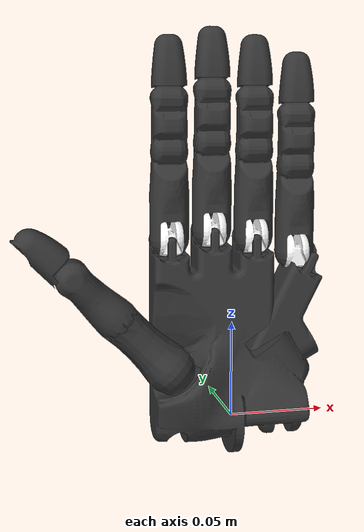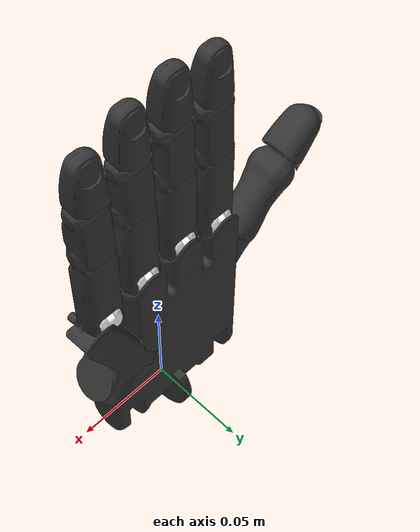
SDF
<sdf version='1.11'>
  <model name='lh_palm'>
    <link name='lh_palm'>
      <inertial>
        <pose>-0.0021985926178870719 -0.00091810075126349774 0.033778046718497323 0 0 0</pose>
        <mass>0.50768530368804932</mass>
        <inertia>
          <ixx>0.00052971416725619428</ixx>
          <ixy>-1.570920562171566e-06</ixy>
          <ixz>1.471569991708484e-05</ixz>
          <iyy>0.0007745936598541678</iyy>
          <iyz>-1.2580024292888871e-05</iyz>
          <izz>0.00029222616847752152</izz>
        </inertia>
      </inertial>
      <collision name='lh_palm_fixed_joint_lump__Geom_1_collision'>
        <pose>-0.01099999994039536 0.008500000461935997 0.037999998778104782 0 0 0</pose>
        <geometry>
          <box>
            <size>0.061999998986721039 0.0070000002160668373 0.097999997437000275</size>
          </box>
        </geometry>
      </collision>
      <collision name='lh_palm_fixed_joint_lump__Geom_2_collision_1'>
        <pose>0.002000000094994903 -0.0035000001080334191 0.037999998778104782 0 0 0</pose>
        <geometry>
          <box>
            <size>0.035999998450279243 0.017000000923871991 0.097999997437000275</size>
          </box>
        </geometry>
      </collision>
      <collision name='lh_palm_fixed_joint_lump__Geom_3_collision_2'>
        <pose>-0.02899999916553497 -0.0035000001080334191 0.082000002264976501 0 0 0</pose>
        <geometry>
          <box>
            <size>0.0260000005364418 0.017000000923871991 0.0099999997764825821</size>
          </box>
        </geometry>
      </collision>
      <collision name='lh_palm_fixed_joint_lump__Geom_4_collision_3'>
        <pose>-0.026499999687075611 -0.0010000000474974511 0.070000000298023224 0.19393959641456601 0.049171395599842072 -0.24521610140800468</pose>
        <geometry>
          <box>
            <size>0.0260000005364418 0.014000000432133669 0.017999999225139621</size>
          </box>
        </geometry>
      </collision>
      <collision name='lh_palm_fixed_joint_lump__Geom_5_collision_4'>
        <pose>-0.031500000506639481 -0.008500000461935997 0.0010000000474974511 0 0 0</pose>
        <geometry>
          <box>
            <size>0.020999999716877941 0.02700000070035458 0.02239999920129776</size>
          </box>
        </geometry>
      </collision>
      <collision name='lh_palm_fixed_joint_lump__Geom_6_collision_5'>
        <pose>-0.01250000018626451 -0.01499999966472387 0.0040000001899898052 0 0 0.48000070452690119</pose>
        <geometry>
          <box>
            <size>0.02199999988079071 0.004999999888241291 0.02999999932944775</size>
          </box>
        </geometry>
      </collision>
      <collision name='lh_palm_fixed_joint_lump__Geom_7_collision_6'>
        <pose>-0.01099999994039536 0 0.089000001549720764 0 0 0</pose>
        <geometry>
          <box>
            <size>0.017999999225139621 0.02400000020861626 0.0040000001899898052</size>
          </box>
        </geometry>
      </collision>
      <collision name='lh_palm_fixed_joint_lump__Geom_8_collision_7'>
        <pose>0.02999999932944775 0 0.008999999612569809 0 0 0</pose>
        <geometry>
          <box>
            <size>0.019999999552965161 0.02400000020861626 0.039999999105930328</size>
          </box>
        </geometry>
      </collision>
      <visual name='lh_palm_fixed_joint_lump__Geom_0_visual'>
        <pose>-0.0053744451142847538 -0.0022442906629294161 0.032012943178415298 -0.2100458145141601 0.083132773637771648 1.5912715196609499</pose>
        <geometry>
          <mesh>
            <scale>1 1 1</scale>
            <uri>./assets/obj/l_palm.obj</uri>
          </mesh>
        </geometry>
        <material>
          <diffuse>0.204437509 0.204437509 0.204437509 1</diffuse>
          <ambient>0.204437509 0.204437509 0.204437509 1</ambient>
        </material>
      </visual>
    </link>
    <joint name='lh_FFJ4' type='revolute'>
      <pose relative_to='lh_palm'>-0.032999999821186073 0 0.094999998807907104 0 0 0</pose>
      <parent>lh_palm</parent>
      <child>lh_ffknuckle</child>
      <axis>
        <xyz>0 1 0</xyz>
        <limit>
          <lower>-0.34906598925590521</lower>
          <upper>0.34906598925590521</upper>
          <effort>1000</effort>
          <velocity>1000</velocity>
        </limit>
        <dynamics>
          <spring_reference>0</spring_reference>
          <spring_stiffness>0</spring_stiffness>
        </dynamics>
      </axis>
    </joint>
    <link name='lh_ffknuckle'>
      <pose relative_to='lh_FFJ4'>0 0 0 0 0 0</pose>
      <inertial>
        <pose>0 0 0 0 0 0</pose>
        <mass>0.0080000003799796104</mass>
        <inertia>
          <ixx>2.6000000730164169e-07</ixx>
          <ixy>0</ixy>
          <ixz>0</ixz>
          <iyy>2.6000000730164169e-07</iyy>
          <iyz>0</iyz>
          <izz>3.1999999805520929e-07</izz>
        </inertia>
      </inertial>
      <collision name='lh_ffknuckle_fixed_joint_lump__Geom_11_collision'>
        <pose>0 0 0 0 1.5707963267948966 0</pose>
        <geometry>
          <cylinder>
            <length>0.017999999225139621</length>
            <radius>0.008999999612569809</radius>
          </cylinder>
        </geometry>
      </collision>
      <visual name='lh_ffknuckle_fixed_joint_lump__Geom_10_visual'>
        <pose>-8.0159534263657406e-06 0.00028383333119563758 0.0003141145571134984 0.47617125511169428 0 0</pose>
        <geometry>
          <mesh>
            <scale>1 1 1</scale>
            <uri>./assets/obj/f_knuckle.obj</uri>
          </mesh>
        </geometry>
        <material>
          <diffuse>1 1 1 1</diffuse>
          <ambient>1 1 1 1</ambient>
        </material>
      </visual>
    </link>
    <joint name='lh_FFJ3' type='revolute'>
      <pose relative_to='lh_ffknuckle'>0 0 0 0 0 0</pose>
      <parent>lh_ffknuckle</parent>
      <child>lh_ffproximal</child>
      <axis>
        <xyz>1 0 0</xyz>
        <limit>
          <lower>-0.26179900765419012</lower>
          <upper>1.5708000659942629</upper>
          <effort>1000</effort>
          <velocity>1000</velocity>
        </limit>
        <dynamics>
          <spring_reference>0</spring_reference>
          <spring_stiffness>0</spring_stiffness>
        </dynamics>
      </axis>
    </joint>
    <link name='lh_ffproximal'>
      <pose relative_to='lh_FFJ3'>0 0 0 0 0 0</pose>
      <inertial>
        <pose>0 0 0.022500000894069672 0 0 0</pose>
        <mass>0.02999999932944775</mass>
        <inertia>
          <ixx>9.8000000434694812e-06</ixx>
          <ixy>0</ixy>
          <ixz>0</ixz>
          <iyy>9.9999997473787516e-06</iyy>
          <iyz>0</iyz>
          <izz>1.799999949980702e-06</izz>
        </inertia>
      </inertial>
      <collision name='lh_ffproximal_fixed_joint_lump__Geom_13_collision'>
        <pose>0 0 0.02500000037252903 0 0 0</pose>
        <geometry>
          <cylinder>
            <length>0.039999999105930328</length>
            <radius>0.008999999612569809</radius>
          </cylinder>
        </geometry>
      </collision>
      <visual name='lh_ffproximal_fixed_joint_lump__Geom_12_visual'>
        <pose>1.2104840152460379e-06 9.7617894425638951e-06 0.022880652919411659 -8.674230925925565e-19 0.011893937364220619 1.5707963705062868</pose>
        <geometry>
          <mesh>
            <scale>1 1 1</scale>
            <uri>./assets/obj/f_proximal.obj</uri>
          </mesh>
        </geometry>
        <material>
          <diffuse>0.204437509 0.204437509 0.204437509 1</diffuse>
          <ambient>0.204437509 0.204437509 0.204437509 1</ambient>
        </material>
      </visual>
    </link>
    <joint name='lh_FFJ2' type='revolute'>
      <pose relative_to='lh_ffproximal'>0 0 0.045000001788139343 0 0 0</pose>
      <parent>lh_ffproximal</parent>
      <child>lh_ffmiddle</child>
      <axis>
        <xyz>1 0 0</xyz>
        <limit>
          <lower>0</lower>
          <upper>1.5708000659942629</upper>
          <effort>1000</effort>
          <velocity>1000</velocity>
        </limit>
        <dynamics>
          <spring_reference>0</spring_reference>
          <spring_stiffness>0</spring_stiffness>
        </dynamics>
      </axis>
    </joint>
    <link name='lh_ffmiddle'>
      <pose relative_to='lh_FFJ2'>0 0 0 0 0 0</pose>
      <inertial>
        <pose>0 0 0.01250000018626451 0 0 0</pose>
        <mass>0.017000000923871991</mass>
        <inertia>
          <ixx>2.600000016172999e-06</ixx>
          <ixy>0</ixy>
          <ixz>0</ixz>
          <iyy>2.7000000955013088e-06</iyy>
          <iyz>0</iyz>
          <izz>8.7000000803527655e-07</izz>
        </inertia>
      </inertial>
      <collision name='lh_ffmiddle_fixed_joint_lump__Geom_15_collision'>
        <pose>0 0 0.01250000018626451 0 0 0</pose>
        <geometry>
          <cylinder>
            <length>0.02500000037252903</length>
            <radius>0.008999999612569809</radius>
          </cylinder>
        </geometry>
      </collision>
      <visual name='lh_ffmiddle_fixed_joint_lump__Geom_14_visual'>
        <pose>-2.7197006602364131e-06 -3.2192867365665727e-05 0.011511409655213359 0 0 1.5707963705062871</pose>
        <geometry>
          <mesh>
            <scale>1 1 1</scale>
            <uri>./assets/obj/f_middle.obj</uri>
          </mesh>
        </geometry>
        <material>
          <diffuse>0.204437509 0.204437509 0.204437509 1</diffuse>
          <ambient>0.204437509 0.204437509 0.204437509 1</ambient>
        </material>
      </visual>
    </link>
    <joint name='lh_FFJ1' type='revolute'>
      <pose relative_to='lh_ffmiddle'>0 0 0.02500000037252903 0 0 0</pose>
      <parent>lh_ffmiddle</parent>
      <child>lh_ffdistal</child>
      <axis>
        <xyz>1 0 0</xyz>
        <limit>
          <lower>0</lower>
          <upper>1.5708000659942629</upper>
          <effort>1000</effort>
          <velocity>1000</velocity>
        </limit>
        <dynamics>
          <spring_reference>0</spring_reference>
          <spring_stiffness>0</spring_stiffness>
        </dynamics>
      </axis>
    </joint>
    <link name='lh_ffdistal'>
      <pose relative_to='lh_FFJ1'>0 0 0 0 0 0</pose>
      <inertial>
        <pose>0 0 0.0130768995732069 0 0 0</pose>
        <mass>0.0130000002682209</mass>
        <inertia>
          <ixx>1.120920046560059e-06</ixx>
          <ixy>0</ixy>
          <ixz>0</ixz>
          <iyy>1.2809199461116801e-06</iyy>
          <iyz>0</iyz>
          <izz>5.3000002253611456e-07</izz>
        </inertia>
      </inertial>
      <collision name='lh_ffdistal_fixed_joint_lump__Geom_17_collision'>
        <pose>-2.3984401195775721e-05 0.00042073254007846122 0.01764647476375103 0 0 1.5707963705062871</pose>
        <geometry>
          <mesh>
            <scale>1 1 1</scale>
            <uri>./assets/stl/f_distal_pst.stl</uri>
          </mesh>
        </geometry>
      </collision>
      <visual name='lh_ffdistal_fixed_joint_lump__Geom_16_visual'>
        <pose>-2.3984401195775721e-05 0.00042073254007846122 0.01764647476375103 0 0 1.5707963705062871</pose>
        <geometry>
          <mesh>
            <scale>1 1 1</scale>
            <uri>./assets/obj/f_distal_pst.obj</uri>
          </mesh>
        </geometry>
        <material>
          <diffuse>0.204437509 0.204437509 0.204437509 1</diffuse>
          <ambient>0.204437509 0.204437509 0.204437509 1</ambient>
        </material>
      </visual>
    </link>
    <joint name='lh_LFJ5' type='revolute'>
      <pose relative_to='lh_palm'>0.032999999821186073 0 0.020710000768303871 0 0 0</pose>
      <parent>lh_palm</parent>
      <child>lh_lfmetacarpal</child>
      <axis>
        <xyz>0.57357615232467651 0 -0.81915223598480225</xyz>
        <limit>
          <lower>0</lower>
          <upper>0.78539800643920898</upper>
          <effort>1000</effort>
          <velocity>1000</velocity>
        </limit>
        <dynamics>
          <spring_reference>0</spring_reference>
          <spring_stiffness>0</spring_stiffness>
        </dynamics>
      </axis>
    </joint>
    <link name='lh_lfmetacarpal'>
      <pose relative_to='lh_LFJ5'>0 0 0 0 0 0</pose>
      <inertial>
        <pose>0 0 0.039999999105930328 0 0 0</pose>
        <mass>0.02999999932944775</mass>
        <inertia>
          <ixx>1.450000036129495e-05</ixx>
          <ixy>0</ixy>
          <ixz>0</ixz>
          <iyy>1.6379999578930441e-05</iyy>
          <iyz>0</iyz>
          <izz>4.2719998418760952e-06</izz>
        </inertia>
      </inertial>
      <collision name='lh_lfmetacarpal_fixed_joint_lump__Geom_35_collision'>
        <pose>-0.002000000094994903 0 0.032999999821186073 0 0 0</pose>
        <geometry>
          <box>
            <size>0.02199999988079071 0.02400000020861626 0.05000000074505806</size>
          </box>
        </geometry>
      </collision>
      <visual name='lh_lfmetacarpal_fixed_joint_lump__Geom_34_visual'>
        <pose>-0.0024777483195066452 0.00066233589313924313 0.036479774862527847 0.23058989644050601 0.039690095931291594 1.5920475721359251</pose>
        <geometry>
          <mesh>
            <scale>1 1 1</scale>
            <uri>./assets/obj/lf_metacarpal.obj</uri>
          </mesh>
        </geometry>
        <material>
          <diffuse>0.204437509 0.204437509 0.204437509 1</diffuse>
          <ambient>0.204437509 0.204437509 0.204437509 1</ambient>
        </material>
      </visual>
    </link>
    <joint name='lh_LFJ4' type='revolute'>
      <pose relative_to='lh_lfmetacarpal'>0 0 0.065789997577667236 0 0 0</pose>
      <parent>lh_lfmetacarpal</parent>
      <child>lh_lfknuckle</child>
      <axis>
        <xyz>0 -1 0</xyz>
        <limit>
          <lower>-0.34906598925590521</lower>
          <upper>0.34906598925590521</upper>
          <effort>1000</effort>
          <velocity>1000</velocity>
        </limit>
        <dynamics>
          <spring_reference>0</spring_reference>
          <spring_stiffness>0</spring_stiffness>
        </dynamics>
      </axis>
    </joint>
    <link name='lh_lfknuckle'>
      <pose relative_to='lh_LFJ4'>0 0 0 0 0 0</pose>
      <inertial>
        <pose>0 0 0 0 0 0</pose>
        <mass>0.0080000003799796104</mass>
        <inertia>
          <ixx>2.6000000730164169e-07</ixx>
          <ixy>0</ixy>
          <ixz>0</ixz>
          <iyy>2.6000000730164169e-07</iyy>
          <iyz>0</iyz>
          <izz>3.1999999805520929e-07</izz>
        </inertia>
      </inertial>
      <collision name='lh_lfknuckle_fixed_joint_lump__Geom_37_collision'>
        <pose>0 0 0 0 1.5707963267948966 0</pose>
        <geometry>
          <cylinder>
            <length>0.017999999225139621</length>
            <radius>0.008999999612569809</radius>
          </cylinder>
        </geometry>
      </collision>
      <visual name='lh_lfknuckle_fixed_joint_lump__Geom_36_visual'>
        <pose>-8.0159534263657406e-06 0.00028383333119563758 0.0003141145571134984 0.47617125511169428 0 0</pose>
        <geometry>
          <mesh>
            <scale>1 1 1</scale>
            <uri>./assets/obj/f_knuckle.obj</uri>
          </mesh>
        </geometry>
        <material>
          <diffuse>1 1 1 1</diffuse>
          <ambient>1 1 1 1</ambient>
        </material>
      </visual>
    </link>
    <joint name='lh_LFJ3' type='revolute'>
      <pose relative_to='lh_lfknuckle'>0 0 0 0 0 0</pose>
      <parent>lh_lfknuckle</parent>
      <child>lh_lfproximal</child>
      <axis>
        <xyz>1 0 0</xyz>
        <limit>
          <lower>-0.26179900765419012</lower>
          <upper>1.5708000659942629</upper>
          <effort>1000</effort>
          <velocity>1000</velocity>
        </limit>
        <dynamics>
          <spring_reference>0</spring_reference>
          <spring_stiffness>0</spring_stiffness>
        </dynamics>
      </axis>
    </joint>
    <link name='lh_lfproximal'>
      <pose relative_to='lh_LFJ3'>0 0 0 0 0 0</pose>
      <inertial>
        <pose>0 0 0.022500000894069672 0 0 0</pose>
        <mass>0.02999999932944775</mass>
        <inertia>
          <ixx>9.8000000434694812e-06</ixx>
          <ixy>0</ixy>
          <ixz>0</ixz>
          <iyy>9.9999997473787516e-06</iyy>
          <iyz>0</iyz>
          <izz>1.799999949980702e-06</izz>
        </inertia>
      </inertial>
      <collision name='lh_lfproximal_fixed_joint_lump__Geom_39_collision'>
        <pose>0 0 0.02500000037252903 0 0 0</pose>
        <geometry>
          <cylinder>
            <length>0.039999999105930328</length>
            <radius>0.008999999612569809</radius>
          </cylinder>
        </geometry>
      </collision>
      <visual name='lh_lfproximal_fixed_joint_lump__Geom_38_visual'>
        <pose>1.2104840152460379e-06 9.7617894425638951e-06 0.022880652919411659 -8.674230925925565e-19 0.011893937364220619 1.5707963705062868</pose>
        <geometry>
          <mesh>
            <scale>1 1 1</scale>
            <uri>./assets/obj/f_proximal.obj</uri>
          </mesh>
        </geometry>
        <material>
          <diffuse>0.204437509 0.204437509 0.204437509 1</diffuse>
          <ambient>0.204437509 0.204437509 0.204437509 1</ambient>
        </material>
      </visual>
    </link>
    <joint name='lh_LFJ2' type='revolute'>
      <pose relative_to='lh_lfproximal'>0 0 0.045000001788139343 0 0 0</pose>
      <parent>lh_lfproximal</parent>
      <child>lh_lfmiddle</child>
      <axis>
        <xyz>1 0 0</xyz>
        <limit>
          <lower>0</lower>
          <upper>1.5708000659942629</upper>
          <effort>1000</effort>
          <velocity>1000</velocity>
        </limit>
        <dynamics>
          <spring_reference>0</spring_reference>
          <spring_stiffness>0</spring_stiffness>
        </dynamics>
      </axis>
    </joint>
    <link name='lh_lfmiddle'>
      <pose relative_to='lh_LFJ2'>0 0 0 0 0 0</pose>
      <inertial>
        <pose>0 0 0.01250000018626451 0 0 0</pose>
        <mass>0.017000000923871991</mass>
        <inertia>
          <ixx>2.600000016172999e-06</ixx>
          <ixy>0</ixy>
          <ixz>0</ixz>
          <iyy>2.7000000955013088e-06</iyy>
          <iyz>0</iyz>
          <izz>8.7000000803527655e-07</izz>
        </inertia>
      </inertial>
      <collision name='lh_lfmiddle_fixed_joint_lump__Geom_41_collision'>
        <pose>0 0 0.01250000018626451 0 0 0</pose>
        <geometry>
          <cylinder>
            <length>0.02500000037252903</length>
            <radius>0.008999999612569809</radius>
          </cylinder>
        </geometry>
      </collision>
      <visual name='lh_lfmiddle_fixed_joint_lump__Geom_40_visual'>
        <pose>-2.7197006602364131e-06 -3.2192867365665727e-05 0.011511409655213359 0 0 1.5707963705062871</pose>
        <geometry>
          <mesh>
            <scale>1 1 1</scale>
            <uri>./assets/obj/f_middle.obj</uri>
          </mesh>
        </geometry>
        <material>
          <diffuse>0.204437509 0.204437509 0.204437509 1</diffuse>
          <ambient>0.204437509 0.204437509 0.204437509 1</ambient>
        </material>
      </visual>
    </link>
    <joint name='lh_LFJ1' type='revolute'>
      <pose relative_to='lh_lfmiddle'>0 0 0.02500000037252903 0 0 0</pose>
      <parent>lh_lfmiddle</parent>
      <child>lh_lfdistal</child>
      <axis>
        <xyz>1 0 0</xyz>
        <limit>
          <lower>0</lower>
          <upper>1.5708000659942629</upper>
          <effort>1000</effort>
          <velocity>1000</velocity>
        </limit>
        <dynamics>
          <spring_reference>0</spring_reference>
          <spring_stiffness>0</spring_stiffness>
        </dynamics>
      </axis>
    </joint>
    <link name='lh_lfdistal'>
      <pose relative_to='lh_LFJ1'>0 0 0 0 0 0</pose>
      <inertial>
        <pose>0 0 0.0130768995732069 0 0 0</pose>
        <mass>0.0130000002682209</mass>
        <inertia>
          <ixx>1.120920046560059e-06</ixx>
          <ixy>0</ixy>
          <ixz>0</ixz>
          <iyy>1.2809199461116801e-06</iyy>
          <iyz>0</iyz>
          <izz>5.3000002253611456e-07</izz>
        </inertia>
      </inertial>
      <collision name='lh_lfdistal_fixed_joint_lump__Geom_43_collision'>
        <pose>-2.3984401195775721e-05 0.00042073254007846122 0.01764647476375103 0 0 1.5707963705062871</pose>
        <geometry>
          <mesh>
            <scale>1 1 1</scale>
            <uri>./assets/stl/f_distal_pst.stl</uri>
          </mesh>
        </geometry>
      </collision>
      <visual name='lh_lfdistal_fixed_joint_lump__Geom_42_visual'>
        <pose>-2.3984401195775721e-05 0.00042073254007846122 0.01764647476375103 0 0 1.5707963705062871</pose>
        <geometry>
          <mesh>
            <scale>1 1 1</scale>
            <uri>./assets/obj/f_distal_pst.obj</uri>
          </mesh>
        </geometry>
        <material>
          <diffuse>0.204437509 0.204437509 0.204437509 1</diffuse>
          <ambient>0.204437509 0.204437509 0.204437509 1</ambient>
        </material>
      </visual>
    </link>
    <joint name='lh_MFJ4' type='revolute'>
      <pose relative_to='lh_palm'>-0.01099999994039536 0 0.098999999463558197 0 0 0</pose>
      <parent>lh_palm</parent>
      <child>lh_mfknuckle</child>
      <axis>
        <xyz>0 1 0</xyz>
        <limit>
          <lower>-0.34906598925590521</lower>
          <upper>0.34906598925590521</upper>
          <effort>1000</effort>
          <velocity>1000</velocity>
        </limit>
        <dynamics>
          <spring_reference>0</spring_reference>
          <spring_stiffness>0</spring_stiffness>
        </dynamics>
      </axis>
    </joint>
    <link name='lh_mfknuckle'>
      <pose relative_to='lh_MFJ4'>0 0 0 0 0 0</pose>
      <inertial>
        <pose>0 0 0 0 0 0</pose>
        <mass>0.0080000003799796104</mass>
        <inertia>
          <ixx>2.6000000730164169e-07</ixx>
          <ixy>0</ixy>
          <ixz>0</ixz>
          <iyy>2.6000000730164169e-07</iyy>
          <iyz>0</iyz>
          <izz>3.1999999805520929e-07</izz>
        </inertia>
      </inertial>
      <collision name='lh_mfknuckle_fixed_joint_lump__Geom_19_collision'>
        <pose>0 0 0 0 1.5707963267948966 0</pose>
        <geometry>
          <cylinder>
            <length>0.017999999225139621</length>
            <radius>0.008999999612569809</radius>
          </cylinder>
        </geometry>
      </collision>
      <visual name='lh_mfknuckle_fixed_joint_lump__Geom_18_visual'>
        <pose>-8.0159534263657406e-06 0.00028383333119563758 0.0003141145571134984 0.47617125511169428 0 0</pose>
        <geometry>
          <mesh>
            <scale>1 1 1</scale>
            <uri>./assets/obj/f_knuckle.obj</uri>
          </mesh>
        </geometry>
        <material>
          <diffuse>1 1 1 1</diffuse>
          <ambient>1 1 1 1</ambient>
        </material>
      </visual>
    </link>
    <joint name='lh_MFJ3' type='revolute'>
      <pose relative_to='lh_mfknuckle'>0 0 0 0 0 0</pose>
      <parent>lh_mfknuckle</parent>
      <child>lh_mfproximal</child>
      <axis>
        <xyz>1 0 0</xyz>
        <limit>
          <lower>-0.26179900765419012</lower>
          <upper>1.5708000659942629</upper>
          <effort>1000</effort>
          <velocity>1000</velocity>
        </limit>
        <dynamics>
          <spring_reference>0</spring_reference>
          <spring_stiffness>0</spring_stiffness>
        </dynamics>
      </axis>
    </joint>
    <link name='lh_mfproximal'>
      <pose relative_to='lh_MFJ3'>0 0 0 0 0 0</pose>
      <inertial>
        <pose>0 0 0.022500000894069672 0 0 0</pose>
        <mass>0.02999999932944775</mass>
        <inertia>
          <ixx>9.8000000434694812e-06</ixx>
          <ixy>0</ixy>
          <ixz>0</ixz>
          <iyy>9.9999997473787516e-06</iyy>
          <iyz>0</iyz>
          <izz>1.799999949980702e-06</izz>
        </inertia>
      </inertial>
      <collision name='lh_mfproximal_fixed_joint_lump__Geom_21_collision'>
        <pose>0 0 0.02500000037252903 0 0 0</pose>
        <geometry>
          <cylinder>
            <length>0.039999999105930328</length>
            <radius>0.008999999612569809</radius>
          </cylinder>
        </geometry>
      </collision>
      <visual name='lh_mfproximal_fixed_joint_lump__Geom_20_visual'>
        <pose>1.2104840152460379e-06 9.7617894425638951e-06 0.022880652919411659 -8.674230925925565e-19 0.011893937364220619 1.5707963705062868</pose>
        <geometry>
          <mesh>
            <scale>1 1 1</scale>
            <uri>./assets/obj/f_proximal.obj</uri>
          </mesh>
        </geometry>
        <material>
          <diffuse>0.204437509 0.204437509 0.204437509 1</diffuse>
          <ambient>0.204437509 0.204437509 0.204437509 1</ambient>
        </material>
      </visual>
    </link>
    <joint name='lh_MFJ2' type='revolute'>
      <pose relative_to='lh_mfproximal'>0 0 0.045000001788139343 0 0 0</pose>
      <parent>lh_mfproximal</parent>
      <child>lh_mfmiddle</child>
      <axis>
        <xyz>1 0 0</xyz>
        <limit>
          <lower>0</lower>
          <upper>1.5708000659942629</upper>
          <effort>1000</effort>
          <velocity>1000</velocity>
        </limit>
        <dynamics>
          <spring_reference>0</spring_reference>
          <spring_stiffness>0</spring_stiffness>
        </dynamics>
      </axis>
    </joint>
    <link name='lh_mfmiddle'>
      <pose relative_to='lh_MFJ2'>0 0 0 0 0 0</pose>
      <inertial>
        <pose>0 0 0.01250000018626451 0 0 0</pose>
        <mass>0.017000000923871991</mass>
        <inertia>
          <ixx>2.600000016172999e-06</ixx>
          <ixy>0</ixy>
          <ixz>0</ixz>
          <iyy>2.7000000955013088e-06</iyy>
          <iyz>0</iyz>
          <izz>8.7000000803527655e-07</izz>
        </inertia>
      </inertial>
      <collision name='lh_mfmiddle_fixed_joint_lump__Geom_23_collision'>
        <pose>0 0 0.01250000018626451 0 0 0</pose>
        <geometry>
          <cylinder>
            <length>0.02500000037252903</length>
            <radius>0.008999999612569809</radius>
          </cylinder>
        </geometry>
      </collision>
      <visual name='lh_mfmiddle_fixed_joint_lump__Geom_22_visual'>
        <pose>-2.7197006602364131e-06 -3.2192867365665727e-05 0.011511409655213359 0 0 1.5707963705062871</pose>
        <geometry>
          <mesh>
            <scale>1 1 1</scale>
            <uri>./assets/obj/f_middle.obj</uri>
          </mesh>
        </geometry>
        <material>
          <diffuse>0.204437509 0.204437509 0.204437509 1</diffuse>
          <ambient>0.204437509 0.204437509 0.204437509 1</ambient>
        </material>
      </visual>
    </link>
    <joint name='lh_MFJ1' type='revolute'>
      <pose relative_to='lh_mfmiddle'>0 0 0.02500000037252903 0 0 0</pose>
      <parent>lh_mfmiddle</parent>
      <child>lh_mfdistal</child>
      <axis>
        <xyz>1 0 0</xyz>
        <limit>
          <lower>0</lower>
          <upper>1.5708000659942629</upper>
          <effort>1000</effort>
          <velocity>1000</velocity>
        </limit>
        <dynamics>
          <spring_reference>0</spring_reference>
          <spring_stiffness>0</spring_stiffness>
        </dynamics>
      </axis>
    </joint>
    <link name='lh_mfdistal'>
      <pose relative_to='lh_MFJ1'>0 0 0 0 0 0</pose>
      <inertial>
        <pose>0 0 0.0130768995732069 0 0 0</pose>
        <mass>0.0130000002682209</mass>
        <inertia>
          <ixx>1.120920046560059e-06</ixx>
          <ixy>0</ixy>
          <ixz>0</ixz>
          <iyy>1.2809199461116801e-06</iyy>
          <iyz>0</iyz>
          <izz>5.3000002253611456e-07</izz>
        </inertia>
      </inertial>
      <collision name='lh_mfdistal_fixed_joint_lump__Geom_25_collision'>
        <pose>-2.3984401195775721e-05 0.00042073254007846122 0.01764647476375103 0 0 1.5707963705062871</pose>
        <geometry>
          <mesh>
            <scale>1 1 1</scale>
            <uri>./assets/stl/f_distal_pst.stl</uri>
          </mesh>
        </geometry>
      </collision>
      <visual name='lh_mfdistal_fixed_joint_lump__Geom_24_visual'>
        <pose>-2.3984401195775721e-05 0.00042073254007846122 0.01764647476375103 0 0 1.5707963705062871</pose>
        <geometry>
          <mesh>
            <scale>1 1 1</scale>
            <uri>./assets/obj/f_distal_pst.obj</uri>
          </mesh>
        </geometry>
        <material>
          <diffuse>0.204437509 0.204437509 0.204437509 1</diffuse>
          <ambient>0.204437509 0.204437509 0.204437509 1</ambient>
        </material>
      </visual>
    </link>
    <joint name='lh_RFJ4' type='revolute'>
      <pose relative_to='lh_palm'>0.01099999994039536 0 0.094999998807907104 0 0 0</pose>
      <parent>lh_palm</parent>
      <child>lh_rfknuckle</child>
      <axis>
        <xyz>0 -1 0</xyz>
        <limit>
          <lower>-0.34906598925590521</lower>
          <upper>0.34906598925590521</upper>
          <effort>1000</effort>
          <velocity>1000</velocity>
        </limit>
        <dynamics>
          <spring_reference>0</spring_reference>
          <spring_stiffness>0</spring_stiffness>
        </dynamics>
      </axis>
    </joint>
    <link name='lh_rfknuckle'>
      <pose relative_to='lh_RFJ4'>0 0 0 0 0 0</pose>
      <inertial>
        <pose>0 0 0 0 0 0</pose>
        <mass>0.0080000003799796104</mass>
        <inertia>
          <ixx>2.6000000730164169e-07</ixx>
          <ixy>0</ixy>
          <ixz>0</ixz>
          <iyy>2.6000000730164169e-07</iyy>
          <iyz>0</iyz>
          <izz>3.1999999805520929e-07</izz>
        </inertia>
      </inertial>
      <collision name='lh_rfknuckle_fixed_joint_lump__Geom_27_collision'>
        <pose>0 0 0 0 1.5707963267948966 0</pose>
        <geometry>
          <cylinder>
            <length>0.017999999225139621</length>
            <radius>0.008999999612569809</radius>
          </cylinder>
        </geometry>
      </collision>
      <visual name='lh_rfknuckle_fixed_joint_lump__Geom_26_visual'>
        <pose>-8.0159534263657406e-06 0.00028383333119563758 0.0003141145571134984 0.47617125511169428 0 0</pose>
        <geometry>
          <mesh>
            <scale>1 1 1</scale>
            <uri>./assets/obj/f_knuckle.obj</uri>
          </mesh>
        </geometry>
        <material>
          <diffuse>1 1 1 1</diffuse>
          <ambient>1 1 1 1</ambient>
        </material>
      </visual>
    </link>
    <joint name='lh_RFJ3' type='revolute'>
      <pose relative_to='lh_rfknuckle'>0 0 0 0 0 0</pose>
      <parent>lh_rfknuckle</parent>
      <child>lh_rfproximal</child>
      <axis>
        <xyz>1 0 0</xyz>
        <limit>
          <lower>-0.26179900765419012</lower>
          <upper>1.5708000659942629</upper>
          <effort>1000</effort>
          <velocity>1000</velocity>
        </limit>
        <dynamics>
          <spring_reference>0</spring_reference>
          <spring_stiffness>0</spring_stiffness>
        </dynamics>
      </axis>
    </joint>
    <link name='lh_rfproximal'>
      <pose relative_to='lh_RFJ3'>0 0 0 0 0 0</pose>
      <inertial>
        <pose>0 0 0.022500000894069672 0 0 0</pose>
        <mass>0.02999999932944775</mass>
        <inertia>
          <ixx>9.8000000434694812e-06</ixx>
          <ixy>0</ixy>
          <ixz>0</ixz>
          <iyy>9.9999997473787516e-06</iyy>
          <iyz>0</iyz>
          <izz>1.799999949980702e-06</izz>
        </inertia>
      </inertial>
      <collision name='lh_rfproximal_fixed_joint_lump__Geom_29_collision'>
        <pose>0 0 0.02500000037252903 0 0 0</pose>
        <geometry>
          <cylinder>
            <length>0.039999999105930328</length>
            <radius>0.008999999612569809</radius>
          </cylinder>
        </geometry>
      </collision>
      <visual name='lh_rfproximal_fixed_joint_lump__Geom_28_visual'>
        <pose>1.2104840152460379e-06 9.7617894425638951e-06 0.022880652919411659 -8.674230925925565e-19 0.011893937364220619 1.5707963705062868</pose>
        <geometry>
          <mesh>
            <scale>1 1 1</scale>
            <uri>./assets/obj/f_proximal.obj</uri>
          </mesh>
        </geometry>
        <material>
          <diffuse>0.204437509 0.204437509 0.204437509 1</diffuse>
          <ambient>0.204437509 0.204437509 0.204437509 1</ambient>
        </material>
      </visual>
    </link>
    <joint name='lh_RFJ2' type='revolute'>
      <pose relative_to='lh_rfproximal'>0 0 0.045000001788139343 0 0 0</pose>
      <parent>lh_rfproximal</parent>
      <child>lh_rfmiddle</child>
      <axis>
        <xyz>1 0 0</xyz>
        <limit>
          <lower>0</lower>
          <upper>1.5708000659942629</upper>
          <effort>1000</effort>
          <velocity>1000</velocity>
        </limit>
        <dynamics>
          <spring_reference>0</spring_reference>
          <spring_stiffness>0</spring_stiffness>
        </dynamics>
      </axis>
    </joint>
    <link name='lh_rfmiddle'>
      <pose relative_to='lh_RFJ2'>0 0 0 0 0 0</pose>
      <inertial>
        <pose>0 0 0.01250000018626451 0 0 0</pose>
        <mass>0.017000000923871991</mass>
        <inertia>
          <ixx>2.600000016172999e-06</ixx>
          <ixy>0</ixy>
          <ixz>0</ixz>
          <iyy>2.7000000955013088e-06</iyy>
          <iyz>0</iyz>
          <izz>8.7000000803527655e-07</izz>
        </inertia>
      </inertial>
      <collision name='lh_rfmiddle_fixed_joint_lump__Geom_31_collision'>
        <pose>0 0 0.01250000018626451 0 0 0</pose>
        <geometry>
          <cylinder>
            <length>0.02500000037252903</length>
            <radius>0.008999999612569809</radius>
          </cylinder>
        </geometry>
      </collision>
      <visual name='lh_rfmiddle_fixed_joint_lump__Geom_30_visual'>
        <pose>-2.7197006602364131e-06 -3.2192867365665727e-05 0.011511409655213359 0 0 1.5707963705062871</pose>
        <geometry>
          <mesh>
            <scale>1 1 1</scale>
            <uri>./assets/obj/f_middle.obj</uri>
          </mesh>
        </geometry>
        <material>
          <diffuse>0.204437509 0.204437509 0.204437509 1</diffuse>
          <ambient>0.204437509 0.204437509 0.204437509 1</ambient>
        </material>
      </visual>
    </link>
    <joint name='lh_RFJ1' type='revolute'>
      <pose relative_to='lh_rfmiddle'>0 0 0.02500000037252903 0 0 0</pose>
      <parent>lh_rfmiddle</parent>
      <child>lh_rfdistal</child>
      <axis>
        <xyz>1 0 0</xyz>
        <limit>
          <lower>0</lower>
          <upper>1.5708000659942629</upper>
          <effort>1000</effort>
          <velocity>1000</velocity>
        </limit>
        <dynamics>
          <spring_reference>0</spring_reference>
          <spring_stiffness>0</spring_stiffness>
        </dynamics>
      </axis>
    </joint>
    <link name='lh_rfdistal'>
      <pose relative_to='lh_RFJ1'>0 0 0 0 0 0</pose>
      <inertial>
        <pose>0 0 0.0130768995732069 0 0 0</pose>
        <mass>0.0130000002682209</mass>
        <inertia>
          <ixx>1.120920046560059e-06</ixx>
          <ixy>0</ixy>
          <ixz>0</ixz>
          <iyy>1.2809199461116801e-06</iyy>
          <iyz>0</iyz>
          <izz>5.3000002253611456e-07</izz>
        </inertia>
      </inertial>
      <collision name='lh_rfdistal_fixed_joint_lump__Geom_33_collision'>
        <pose>-2.3984401195775721e-05 0.00042073254007846122 0.01764647476375103 0 0 1.5707963705062871</pose>
        <geometry>
          <mesh>
            <scale>1 1 1</scale>
            <uri>./assets/stl/f_distal_pst.stl</uri>
          </mesh>
        </geometry>
      </collision>
      <visual name='lh_rfdistal_fixed_joint_lump__Geom_32_visual'>
        <pose>-2.3984401195775721e-05 0.00042073254007846122 0.01764647476375103 0 0 1.5707963705062871</pose>
        <geometry>
          <mesh>
            <scale>1 1 1</scale>
            <uri>./assets/obj/f_distal_pst.obj</uri>
          </mesh>
        </geometry>
        <material>
          <diffuse>0.204437509 0.204437509 0.204437509 1</diffuse>
          <ambient>0.204437509 0.204437509 0.204437509 1</ambient>
        </material>
      </visual>
    </link>
    <joint name='lh_THJ5' type='revolute'>
      <pose relative_to='lh_palm'>-0.034000001847743988 -0.008580000139772892 0.02899999916553497 0 0.78539699316024758 -3.141592566167013</pose>
      <parent>lh_palm</parent>
      <child>lh_thbase</child>
      <axis>
        <xyz>0 0 1</xyz>
        <limit>
          <lower>-1.047199964523315</lower>
          <upper>1.047199964523315</upper>
          <effort>1000</effort>
          <velocity>1000</velocity>
        </limit>
        <dynamics>
          <spring_reference>0</spring_reference>
          <spring_stiffness>0</spring_stiffness>
        </dynamics>
      </axis>
    </joint>
    <link name='lh_thbase'>
      <pose relative_to='lh_THJ5'>0 0 0 0 0 0</pose>
      <inertial>
        <pose>0 0 0 0 0 0</pose>
        <mass>0.0099999997764825821</mass>
        <inertia>
          <ixx>1.5999999902760459e-07</ixx>
          <ixy>0</ixy>
          <ixz>0</ixz>
          <iyy>1.5999999902760459e-07</iyy>
          <iyz>0</iyz>
          <izz>1.5999999902760459e-07</izz>
        </inertia>
      </inertial>
      <collision name='lh_thbase_fixed_joint_lump__Geom_44_collision'>
        <pose>0 0 0 0 0 0</pose>
        <geometry>
          <sphere>
            <radius>0.0130000002682209</radius>
          </sphere>
        </geometry>
      </collision>
    </link>
    <joint name='lh_THJ4' type='revolute'>
      <pose relative_to='lh_thbase'>8.6736173798840355e-19 0 6.9388939039072284e-18 0 0 0</pose>
      <parent>lh_thbase</parent>
      <child>lh_thproximal</child>
      <axis>
        <xyz>-1 0 0</xyz>
        <limit>
          <lower>0</lower>
          <upper>1.22172999382019</upper>
          <effort>1000</effort>
          <velocity>1000</velocity>
        </limit>
        <dynamics>
          <spring_reference>0</spring_reference>
          <spring_stiffness>0</spring_stiffness>
        </dynamics>
      </axis>
    </joint>
    <link name='lh_thproximal'>
      <pose relative_to='lh_THJ4'>0 0 0 0 0 0</pose>
      <inertial>
        <pose>0 0 0.018999999389052391 0 0 0</pose>
        <mass>0.039999999105930328</mass>
        <inertia>
          <ixx>1.3599999874713831e-05</ixx>
          <ixy>0</ixy>
          <ixz>0</ixz>
          <iyy>1.3599999874713831e-05</iyy>
          <iyz>0</iyz>
          <izz>3.130000095552532e-06</izz>
        </inertia>
      </inertial>
      <collision name='lh_thproximal_fixed_joint_lump__Geom_46_collision'>
        <pose>0 0 0.019999999552965161 0 0 0</pose>
        <geometry>
          <cylinder>
            <length>0.017999999225139621</length>
            <radius>0.01049999985843897</radius>
          </cylinder>
        </geometry>
      </collision>
      <visual name='lh_thproximal_fixed_joint_lump__Geom_45_visual'>
        <pose>-6.3788961597310836e-06 -2.6031300876638849e-05 0.016715297475457191 -0.0004153375921305269 0.001014518784359097 -2.7131538054283686e-20</pose>
        <geometry>
          <mesh>
            <scale>1 1 1</scale>
            <uri>./assets/obj/th_proximal.obj</uri>
          </mesh>
        </geometry>
        <material>
          <diffuse>0.204437509 0.204437509 0.204437509 1</diffuse>
          <ambient>0.204437509 0.204437509 0.204437509 1</ambient>
        </material>
      </visual>
    </link>
    <joint name='lh_THJ3' type='revolute'>
      <pose relative_to='lh_thproximal'>-6.0715321659188248e-18 0 0.037999998778104782 0 0 0</pose>
      <parent>lh_thproximal</parent>
      <child>lh_thhub</child>
      <axis>
        <xyz>-1 0 0</xyz>
        <limit>
          <lower>-0.20943999290466311</lower>
          <upper>0.20943999290466311</upper>
          <effort>1000</effort>
          <velocity>1000</velocity>
        </limit>
        <dynamics>
          <spring_reference>0</spring_reference>
          <spring_stiffness>0</spring_stiffness>
        </dynamics>
      </axis>
    </joint>
    <link name='lh_thhub'>
      <pose relative_to='lh_THJ3'>0 0 0 0 0 0</pose>
      <inertial>
        <pose>0 0 0 0 0 0</pose>
        <mass>0.004999999888241291</mass>
        <inertia>
          <ixx>9.9999999747524271e-07</ixx>
          <ixy>0</ixy>
          <ixz>0</ixz>
          <iyy>9.9999999747524271e-07</iyy>
          <iyz>0</iyz>
          <izz>3.0000001061125658e-07</izz>
        </inertia>
      </inertial>
      <collision name='lh_thhub_fixed_joint_lump__Geom_47_collision'>
        <pose>0 0 0 0 0 0</pose>
        <geometry>
          <sphere>
            <radius>0.01099999994039536</radius>
          </sphere>
        </geometry>
      </collision>
    </link>
    <joint name='lh_THJ2' type='revolute'>
      <pose relative_to='lh_thhub'>8.6736173798840355e-19 0 1.387778780781446e-17 0 0 0</pose>
      <parent>lh_thhub</parent>
      <child>lh_thmiddle</child>
      <axis>
        <xyz>0 -1 0</xyz>
        <limit>
          <lower>-0.6981319785118103</lower>
          <upper>0.6981319785118103</upper>
          <effort>1000</effort>
          <velocity>1000</velocity>
        </limit>
        <dynamics>
          <spring_reference>0</spring_reference>
          <spring_stiffness>0</spring_stiffness>
        </dynamics>
      </axis>
    </joint>
    <link name='lh_thmiddle'>
      <pose relative_to='lh_THJ2'>0 0 0 0 0 0</pose>
      <inertial>
        <pose>0 0 0.016000000759959221 0 0 0</pose>
        <mass>0.019999999552965161</mass>
        <inertia>
          <ixx>5.1000001803913619e-06</ixx>
          <ixy>0</ixy>
          <ixz>0</ixz>
          <iyy>5.1000001803913619e-06</iyy>
          <iyz>0</iyz>
          <izz>1.210000050377857e-06</izz>
        </inertia>
      </inertial>
      <collision name='lh_thmiddle_fixed_joint_lump__Geom_49_collision'>
        <pose>0 0 0.01200000010430813 0 0 0</pose>
        <geometry>
          <cylinder>
            <length>0.017999999225139621</length>
            <radius>0.008999999612569809</radius>
          </cylinder>
        </geometry>
      </collision>
      <collision name='lh_thmiddle_fixed_joint_lump__Geom_50_collision_1'>
        <pose>0 0 0.02999999932944775 0 0 0</pose>
        <geometry>
          <sphere>
            <radius>0.0099999997764825821</radius>
          </sphere>
        </geometry>
      </collision>
      <visual name='lh_thmiddle_fixed_joint_lump__Geom_48_visual'>
        <pose>7.4796313128899783e-05 -4.5069773477734998e-05 0.015348398126661779 0 -0.00090354838175699115 0</pose>
        <geometry>
          <mesh>
            <scale>1 1 1</scale>
            <uri>./assets/obj/th_middle.obj</uri>
          </mesh>
        </geometry>
        <material>
          <diffuse>0.204437509 0.204437509 0.204437509 1</diffuse>
          <ambient>0.204437509 0.204437509 0.204437509 1</ambient>
        </material>
      </visual>
    </link>
    <joint name='lh_THJ1' type='revolute'>
      <pose relative_to='lh_thmiddle'>8.6736173798840355e-19 0 0.032000001519918442 0 0 -1.5707963705062871</pose>
      <parent>lh_thmiddle</parent>
      <child>lh_thdistal</child>
      <axis>
        <xyz>1 0 0</xyz>
        <limit>
          <lower>-0.26179900765419012</lower>
          <upper>1.5708000659942629</upper>
          <effort>1000</effort>
          <velocity>1000</velocity>
        </limit>
        <dynamics>
          <spring_reference>0</spring_reference>
          <spring_stiffness>0</spring_stiffness>
        </dynamics>
      </axis>
    </joint>
    <link name='lh_thdistal'>
      <pose relative_to='lh_THJ1'>0 0 0 0 0 0</pose>
      <inertial>
        <pose>0 0 0.014558799564838409 0 0 0</pose>
        <mass>0.017000000923871991</mass>
        <inertia>
          <ixx>2.2779399841965642e-06</ixx>
          <ixy>0</ixy>
          <ixz>0</ixz>
          <iyy>2.3779400635248749e-06</iyy>
          <iyz>0</iyz>
          <izz>9.9999999747524271e-07</izz>
        </inertia>
      </inertial>
      <collision name='lh_thdistal_fixed_joint_lump__Geom_52_collision'>
        <pose>-8.2545216173457447e-07 0.00080251879990100861 0.01955337263643742 0 0 1.5707963705062871</pose>
        <geometry>
          <mesh>
            <scale>1 1 1</scale>
            <uri>./assets/stl/th_distal_pst.stl</uri>
          </mesh>
        </geometry>
      </collision>
      <visual name='lh_thdistal_fixed_joint_lump__Geom_51_visual'>
        <pose>-8.2545216173457447e-07 0.00080251879990100861 0.01955337263643742 0 0 1.5707963705062871</pose>
        <geometry>
          <mesh>
            <scale>1 1 1</scale>
            <uri>./assets/obj/th_distal_pst.obj</uri>
          </mesh>
        </geometry>
        <material>
          <diffuse>0.204437509 0.204437509 0.204437509 1</diffuse>
          <ambient>0.204437509 0.204437509 0.204437509 1</ambient>
        </material>
      </visual>
    </link>
  </model>
</sdf>
